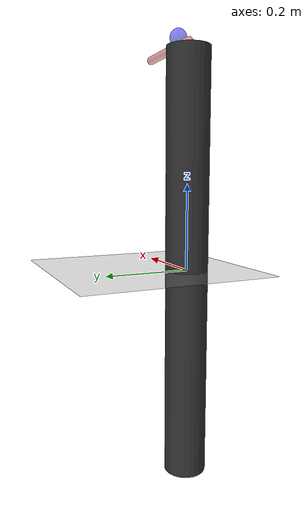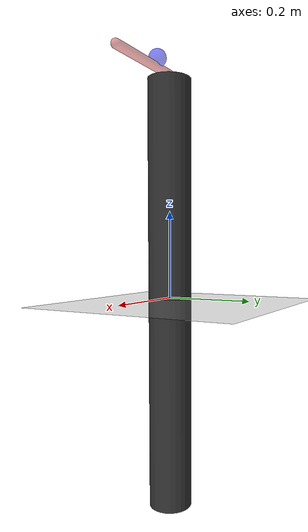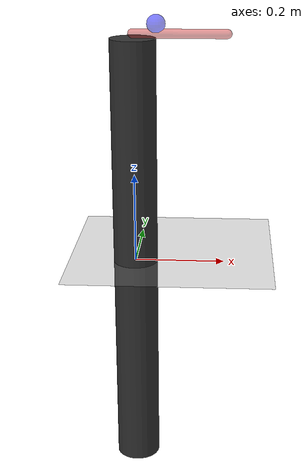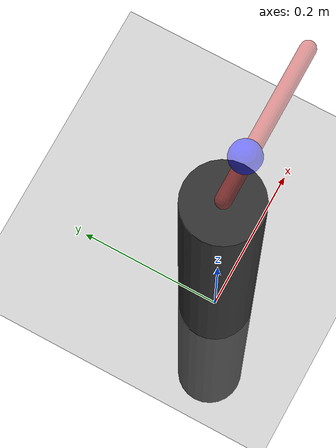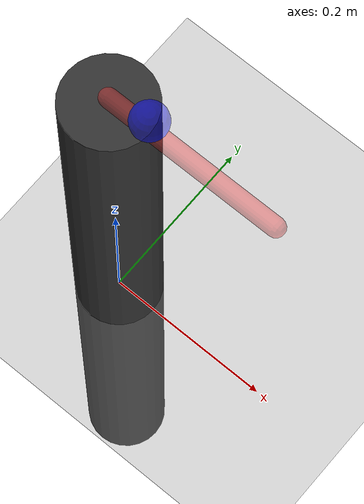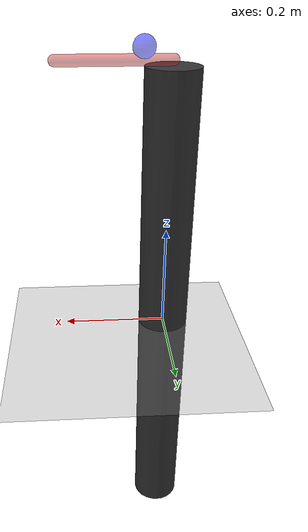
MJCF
<mujoco>
    <compiler angle="radian" meshdir="meshes" autolimits="true" />
    <option timestep="0.002" gravity="0 0 -9.81" integrator="implicitfast" density="1.225" viscosity="1.8e-5" />
    <asset>
        <mesh name="tetrahedron" vertex="0 0 0 1 0 0 0 1 0 0 0 1" />
        <!-- 不能加载jpeg格式图片 -->
        <texture type="skybox" file="sea.png"
            gridsize="3 4" gridlayout=".U..LFRB.D.." />
        <texture name="plane" type="2d" builtin="checker" rgb1=".1 .1 .1" rgb2=".9 .9 .9"
            width="512" height="512" mark="cross" markrgb=".8 .8 .8" />
        <material name="plane" reflectance="0.3" texture="plane" texrepeat="1 1" texuniform="true" />
    </asset>

    <worldbody>
        <geom name="floor" pos="0 0 0" size="0 0 .25" type="plane" material="plane"
            condim="3" />
        <light directional="true" ambient=".3 .3 .3" pos="30 30 30" dir="0 -.5 -1"
            diffuse=".5 .5 .5" specular=".5 .5 .5" />

        <body name="base" pos="0 0 0" >
            <geom type="cylinder" mass="100" size="0.05 0.5" rgba=".2 .2 .2 1" />
            <body name="pointer" pos="0 0 0.51">
                <joint type="hinge" name="pivot" pos="0 0 0" axis="0 0 1" damping="0"
                    frictionloss="0" stiffness="0" />
                <geom type="capsule" mass="0.01" fromto="0 0 0 0.2 0 0" size="0.01"
                    rgba="0.8 0.2 0.2 0.5" />
                    <site name="imu" pos="0.05 0 0.02" size="0.02" rgba="0 0 1 .5"/>
                    <camera name="this_camera" mode="fixed" pos="0.4 0 0.1" euler="0 1.2 1.57" principalpixel="50 50" focalpixel="1080 1920" sensorsize="4 4" resolution="1280 1080"/>
            </body>
        </body>

        <body>

        </body>
    </worldbody>

    <actuator>
        <motor name="motor" joint="pivot"/>
        <velocity name="vel" joint="pivot" kv="10"/>
    </actuator>

    <sensor>
        <framequat name='quat' objtype='site' objname='imu' />
        <gyro name='ang_vel' site='imu' />
        <accelerometer name="accel" site="imu" />
        <jointpos name='pivot_p' joint='pivot' />
        <jointvel name='pivot_v' joint='pivot' />
        <framelinvel name="linvel" objtype="site" objname="imu"/>
    </sensor>

</mujoco>
